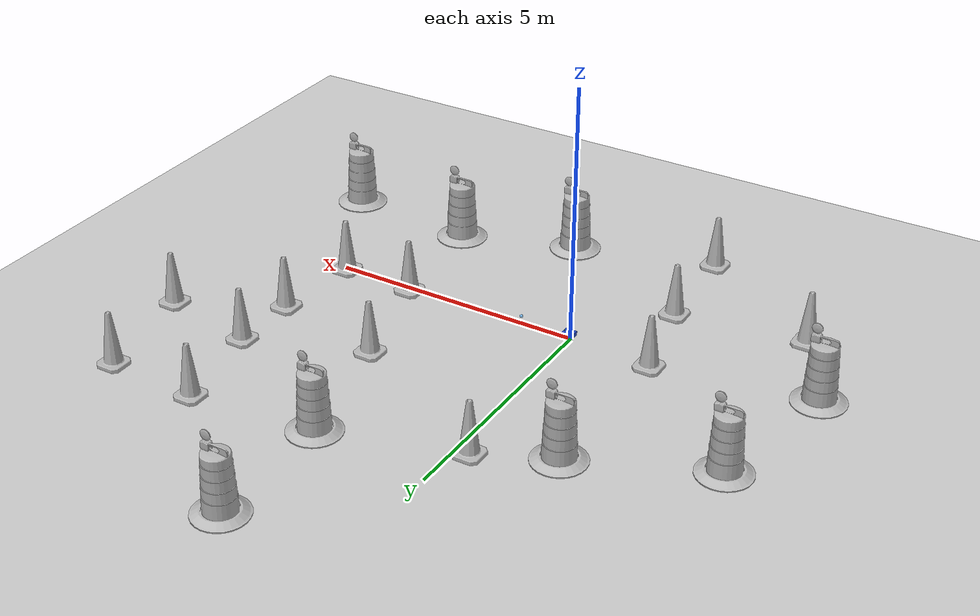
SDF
<sdf version="1.7">
 <world name="default">
  <light name="sun" type="directional">
   <pose>0 0 10 0 -0 0</pose>
   <diffuse>0.8 0.8 0.8 1</diffuse>
   <specular>0.2 0.2 0.2 1</specular>
   <attenuation>
    <range>1000</range>
    <constant>0.9</constant>
    <linear>0.01</linear>
    <quadratic>0.001</quadratic>
   </attenuation>
   <direction>-0.5 0.1 -0.9</direction>
   <spot><inner_angle>0</inner_angle><outer_angle>0</outer_angle><falloff>0</falloff></spot>
  </light>
  <model name="ground_plane">
   <static>1</static>
   <link name="link">
    <collision name="collision">
     <geometry><plane><normal>0 0 1</normal><size>100 100</size></plane></geometry>
     <surface>
      <contact><collide_bitmask>65535</collide_bitmask></contact>
      <friction><ode><mu>100</mu><mu2>50</mu2></ode></friction>
     </surface>
    </collision>
    <visual name="visual">
     <cast_shadows>0</cast_shadows>
     <geometry><plane><normal>0 0 1</normal><size>100 100</size></plane></geometry>
     <material>
      <script><uri>file://media/materials/scripts/gazebo.material</uri><name>Gazebo/Grey</name></script>
     </material>
    </visual>
   </link>
  </model>
  <gravity>0 0 -9.8</gravity>
  <magnetic_field>6e-06 2.3e-05 -4.2e-05</magnetic_field>
  <atmosphere type="adiabatic"/>
  <physics type="ode">
   <max_step_size>0.001</max_step_size>
   <real_time_factor>1</real_time_factor>
   <real_time_update_rate>1000</real_time_update_rate>
  </physics>
  <scene><ambient>0.4 0.4 0.4 1</ambient><background>0.7 0.7 0.7 1</background><shadows>1</shadows></scene>
  <audio><device>default</device></audio>
  <spherical_coordinates>
   <surface_model>EARTH_WGS84</surface_model>
   <latitude_deg>0</latitude_deg>
   <longitude_deg>0</longitude_deg>
   <elevation>0</elevation>
   <heading_deg>0</heading_deg>
  </spherical_coordinates>
  <model name="Construction Barrel">
   <link name="link">
    <inertial>
     <pose>0 0 0.4 0 -0 0</pose>
     <mass>500</mass>
     <inertia><ixx>51.2096</ixx><iyy>51.2096</iyy><izz>25</izz><ixy>0</ixy><ixz>0</ixz><iyz>0</iyz></inertia>
    </inertial>
    <collision name="collision">
     <geometry><mesh><uri>model://construction_barrel/meshes/construction_barrel.dae</uri></mesh></geometry>
    </collision>
    <visual name="visual">
     <geometry><mesh><uri>model://construction_barrel/meshes/construction_barrel.dae</uri></mesh></geometry>
    </visual>
   </link>
   <pose>2.30763 4.79513 -2e-06 7e-06 -4e-06 -3.5e-05</pose>
  </model>
  <model name="Construction Cone">
   <link name="link">
    <collision name="collision">
     <geometry>
      <mesh><scale>10 10 10</scale><uri>model://construction_cone/meshes/construction_cone.dae</uri></mesh>
     </geometry>
    </collision>
    <visual name="visual">
     <geometry>
      <mesh><scale>10 10 10</scale><uri>model://construction_cone/meshes/construction_cone.dae</uri></mesh>
     </geometry>
    </visual>
    <inertial>
     <inertia><ixx>1</ixx><ixy>0</ixy><ixz>0</ixz><iyy>1</iyy><iyz>0</iyz><izz>1</izz></inertia>
     <mass>1</mass>
    </inertial>
   </link>
   <pose>5.11771 1.81775 -0 0 -1e-06 0</pose>
  </model>
  <model name="Construction Cone_0">
   <link name="link">
    <collision name="collision">
     <geometry>
      <mesh><scale>10 10 10</scale><uri>model://construction_cone/meshes/construction_cone.dae</uri></mesh>
     </geometry>
    </collision>
    <visual name="visual">
     <geometry>
      <mesh><scale>10 10 10</scale><uri>model://construction_cone/meshes/construction_cone.dae</uri></mesh>
     </geometry>
    </visual>
    <inertial>
     <inertia><ixx>1</ixx><ixy>0</ixy><ixz>0</ixz><iyy>1</iyy><iyz>0</iyz><izz>1</izz></inertia>
     <mass>1</mass>
    </inertial>
   </link>
   <pose>5.11984 3.15792 -0 0 -0 0</pose>
  </model>
  <model name="Construction Cone_0_clone">
   <link name="link">
    <collision name="collision">
     <geometry>
      <mesh><scale>10 10 10</scale><uri>model://construction_cone/meshes/construction_cone.dae</uri></mesh>
     </geometry>
    </collision>
    <visual name="visual">
     <geometry>
      <mesh><scale>10 10 10</scale><uri>model://construction_cone/meshes/construction_cone.dae</uri></mesh>
     </geometry>
    </visual>
    <inertial>
     <inertia><ixx>1</ixx><ixy>0</ixy><ixz>0</ixz><iyy>1</iyy><iyz>0</iyz><izz>1</izz></inertia>
     <mass>1</mass>
    </inertial>
   </link>
   <pose>2.86711 2.31366 -1e-05 0 -0 0</pose>
  </model>
  <model name="Construction Cone_0_clone_0">
   <link name="link">
    <collision name="collision">
     <geometry>
      <mesh><scale>10 10 10</scale><uri>model://construction_cone/meshes/construction_cone.dae</uri></mesh>
     </geometry>
    </collision>
    <visual name="visual">
     <geometry>
      <mesh><scale>10 10 10</scale><uri>model://construction_cone/meshes/construction_cone.dae</uri></mesh>
     </geometry>
    </visual>
    <inertial>
     <inertia><ixx>1</ixx><ixy>0</ixy><ixz>0</ixz><iyy>1</iyy><iyz>0</iyz><izz>1</izz></inertia>
     <mass>1</mass>
    </inertial>
   </link>
   <pose>4.7463 5.08418 -0 0 -1e-06 0</pose>
  </model>
  <model name="Construction Cone_0_clone_1">
   <link name="link">
    <collision name="collision">
     <geometry>
      <mesh><scale>10 10 10</scale><uri>model://construction_cone/meshes/construction_cone.dae</uri></mesh>
     </geometry>
    </collision>
    <visual name="visual">
     <geometry>
      <mesh><scale>10 10 10</scale><uri>model://construction_cone/meshes/construction_cone.dae</uri></mesh>
     </geometry>
    </visual>
    <inertial>
     <inertia><ixx>1</ixx><ixy>0</ixy><ixz>0</ixz><iyy>1</iyy><iyz>0</iyz><izz>1</izz></inertia>
     <mass>1</mass>
    </inertial>
   </link>
   <pose>7.01819 2.78588 -0 0 -0 0</pose>
  </model>
  <model name="Construction Cone_0_clone_2">
   <link name="link">
    <collision name="collision">
     <geometry>
      <mesh><scale>10 10 10</scale><uri>model://construction_cone/meshes/construction_cone.dae</uri></mesh>
     </geometry>
    </collision>
    <visual name="visual">
     <geometry>
      <mesh><scale>10 10 10</scale><uri>model://construction_cone/meshes/construction_cone.dae</uri></mesh>
     </geometry>
    </visual>
    <inertial>
     <inertia><ixx>1</ixx><ixy>0</ixy><ixz>0</ixz><iyy>1</iyy><iyz>0</iyz><izz>1</izz></inertia>
     <mass>1</mass>
    </inertial>
   </link>
   <pose>4.94187 0.059317 0 -0 -0 -0</pose>
  </model>
  <model name="Construction Cone_0_clone_3">
   <link name="link">
    <collision name="collision">
     <geometry>
      <mesh><scale>10 10 10</scale><uri>model://construction_cone/meshes/construction_cone.dae</uri></mesh>
     </geometry>
    </collision>
    <visual name="visual">
     <geometry>
      <mesh><scale>10 10 10</scale><uri>model://construction_cone/meshes/construction_cone.dae</uri></mesh>
     </geometry>
    </visual>
    <inertial>
     <inertia><ixx>1</ixx><ixy>0</ixy><ixz>0</ixz><iyy>1</iyy><iyz>0</iyz><izz>1</izz></inertia>
     <mass>1</mass>
    </inertial>
   </link>
   <pose>6.57639 5.00083 -0 0 -1e-06 0</pose>
  </model>
  <model name="Construction Barrel_clone">
   <link name="link">
    <inertial>
     <pose>0 0 0.4 0 -0 0</pose>
     <mass>500</mass>
     <inertia><ixx>51.2096</ixx><iyy>51.2096</iyy><izz>25</izz><ixy>0</ixy><ixz>0</ixz><iyz>0</iyz></inertia>
    </inertial>
    <collision name="collision">
     <geometry><mesh><uri>model://construction_barrel/meshes/construction_barrel.dae</uri></mesh></geometry>
    </collision>
    <visual name="visual">
     <geometry><mesh><uri>model://construction_barrel/meshes/construction_barrel.dae</uri></mesh></geometry>
    </visual>
   </link>
   <pose>2.25923 7.37733 -2e-06 7e-06 -4e-06 -2.9e-05</pose>
  </model>
  <model name="Construction Barrel_clone_0">
   <link name="link">
    <inertial>
     <pose>0 0 0.4 0 -0 0</pose>
     <mass>500</mass>
     <inertia><ixx>51.2096</ixx><iyy>51.2096</iyy><izz>25</izz><ixy>0</ixy><ixz>0</ixz><iyz>0</iyz></inertia>
    </inertial>
    <collision name="collision">
     <geometry><mesh><uri>model://construction_barrel/meshes/construction_barrel.dae</uri></mesh></geometry>
    </collision>
    <visual name="visual">
     <geometry><mesh><uri>model://construction_barrel/meshes/construction_barrel.dae</uri></mesh></geometry>
    </visual>
   </link>
   <pose>6.32851 -2.49989 -3e-06 0 -1.2e-05 -3.2e-05</pose>
  </model>
  <model name="Construction Barrel_clone_1">
   <link name="link">
    <inertial>
     <pose>0 0 0.4 0 -0 0</pose>
     <mass>500</mass>
     <inertia><ixx>51.2096</ixx><iyy>51.2096</iyy><izz>25</izz><ixy>0</ixy><ixz>0</ixz><iyz>0</iyz></inertia>
    </inertial>
    <collision name="collision">
     <geometry><mesh><uri>model://construction_barrel/meshes/construction_barrel.dae</uri></mesh></geometry>
    </collision>
    <visual name="visual">
     <geometry><mesh><uri>model://construction_barrel/meshes/construction_barrel.dae</uri></mesh></geometry>
    </visual>
   </link>
   <pose>1.55294 -3.04966 -2e-06 7e-06 -4e-06 -3e-05</pose>
  </model>
  <model name="my_bot">
   <link name="base_link">
    <inertial>
     <pose>0.05876 0 0.049411 0 -0 0</pose>
     <mass>0.7</mass>
     <inertia>
      <ixx>0.00331011</ixx>
      <ixy>0</ixy>
      <ixz>0.000366172</ixz>
      <iyy>0.0036148</iyy>
      <iyz>0</iyz>
      <izz>0.00466744</izz>
     </inertia>
    </inertial>
    <collision name="base_link_fixed_joint_lump__chassis_collision">
     <pose>0.05251 0 0.045175 0 -0 0</pose>
     <geometry><box><size>0.225 0.225 0.09035</size></box></geometry>
    </collision>
    <collision name="base_link_fixed_joint_lump__caster_wheel_collision_1">
     <pose>0.10876 0 0 0 -0 0</pose>
     <geometry><sphere><radius>0.04</radius></sphere></geometry>
     <surface><friction><ode><mu>0.001</mu><mu2>0.001</mu2></ode></friction></surface>
    </collision>
    <collision name="base_link_fixed_joint_lump__laser_frame_collision_2">
     <pose>0.04001 0 0.12 0 -0 0</pose>
     <geometry><cylinder><length>0.025</length><radius>0.04</radius></cylinder></geometry>
    </collision>
    <visual name="base_link_fixed_joint_lump__chassis_visual">
     <pose>0.05251 0 0.045175 0 -0 0</pose>
     <geometry><box><size>0.225 0.225 0.09035</size></box></geometry>
     <material>
      <script><name>Gazebo/Blue</name><uri>file://media/materials/scripts/gazebo.material</uri></script>
     </material>
    </visual>
    <visual name="base_link_fixed_joint_lump__camera_link_visual_1">
     <pose>0.14001 0 0.10285 0 -0 0</pose>
     <geometry><box><size>0.005 0.025 0.025</size></box></geometry>
     <material>
      <script><name>Gazebo/Green</name><uri>file://media/materials/scripts/gazebo.material</uri></script>
     </material>
    </visual>
    <visual name="base_link_fixed_joint_lump__caster_wheel_visual_2">
     <pose>0.10876 0 0 0 -0 0</pose>
     <geometry><sphere><radius>0.04</radius></sphere></geometry>
     <material>
      <script><name>Gazebo/White</name><uri>file://media/materials/scripts/gazebo.material</uri></script>
     </material>
    </visual>
    <visual name="base_link_fixed_joint_lump__laser_frame_visual_3">
     <pose>0.04001 0 0.12 0 -0 0</pose>
     <geometry><cylinder><length>0.025</length><radius>0.04</radius></cylinder></geometry>
     <material>
      <script><name>Gazebo/Red</name><uri>file://media/materials/scripts/gazebo.material</uri></script>
     </material>
    </visual>
    <sensor name="camera" type="camera">
     <visualize>1</visualize>
     <update_rate>10</update_rate>
     <camera>
      <horizontal_fov>1.089</horizontal_fov>
      <image><format>R8G8B8</format><width>640</width><height>480</height></image>
      <clip><near>0.05</near><far>8</far></clip>
     </camera>
     <plugin name="camera_controller" filename="libgazebo_ros_camera.so">
      <frame_name>camera_link_optical</frame_name>
     </plugin>
     <pose>0.14001 0 0.10285 0 -0 0</pose>
    </sensor>
    <sensor name="laser" type="ray">
     <visualize>0</visualize>
     <update_rate>10</update_rate>
     <ray>
      <scan>
       <horizontal>
        <samples>360</samples>
        <min_angle>-3.14</min_angle>
        <max_angle>3.14</max_angle>
        <resolution>1</resolution>
       </horizontal>
       <vertical><samples>1</samples><min_angle>0</min_angle><max_angle>0</max_angle></vertical>
      </scan>
      <range><min>0.3</min><max>12</max></range>
     </ray>
     <plugin name="laser_controller" filename="libgazebo_ros_ray_sensor.so">
      <ros><argument>~/out:=scan</argument></ros>
      <output_type>sensor_msgs/LaserScan</output_type>
      <frame_name>laser_frame</frame_name>
     </plugin>
     <pose>0.04001 0 0.12 0 -0 0</pose>
    </sensor>
   </link>
   <joint name="left_wheel_joint" type="revolute">
    <pose relative_to="base_link">0 0.11975 0 -1.5708 0 0</pose>
    <parent>base_link</parent>
    <child>left_wheel</child>
    <axis>
     <xyz>0 0 1</xyz>
     <limit><lower>-1e+16</lower><upper>1e+16</upper></limit>
     <dynamics><spring_reference>0</spring_reference><spring_stiffness>0</spring_stiffness></dynamics>
    </axis>
   </joint>
   <link name="left_wheel">
    <pose relative_to="left_wheel_joint">0 0 0 0 -0 0</pose>
    <inertial>
     <mass>0.1</mass>
     <inertia>
      <ixx>4.08333e-05</ixx>
      <ixy>0</ixy>
      <ixz>0</ixz>
      <iyy>4.08333e-05</iyy>
      <iyz>0</iyz>
      <izz>8e-05</izz>
     </inertia>
    </inertial>
    <collision name="left_wheel_collision">
     <geometry><cylinder><length>0.01</length><radius>0.04</radius></cylinder></geometry>
    </collision>
    <visual name="left_wheel_visual">
     <geometry><cylinder><length>0.01</length><radius>0.04</radius></cylinder></geometry>
     <material>
      <script><name>Gazebo/Black</name><uri>file://media/materials/scripts/gazebo.material</uri></script>
     </material>
    </visual>
   </link>
   <joint name="right_wheel_joint" type="revolute">
    <pose relative_to="base_link">0 -0.11975 0 1.5708 -0 0</pose>
    <parent>base_link</parent>
    <child>right_wheel</child>
    <axis>
     <xyz>0 0 -1</xyz>
     <limit><lower>-1e+16</lower><upper>1e+16</upper></limit>
     <dynamics><spring_reference>0</spring_reference><spring_stiffness>0</spring_stiffness></dynamics>
    </axis>
   </joint>
   <link name="right_wheel">
    <pose relative_to="right_wheel_joint">0 0 0 0 -0 0</pose>
    <inertial>
     <mass>0.1</mass>
     <inertia>
      <ixx>4.08333e-05</ixx>
      <ixy>0</ixy>
      <ixz>0</ixz>
      <iyy>4.08333e-05</iyy>
      <iyz>0</iyz>
      <izz>8e-05</izz>
     </inertia>
    </inertial>
    <collision name="right_wheel_collision">
     <geometry><cylinder><length>0.01</length><radius>0.04</radius></cylinder></geometry>
    </collision>
    <visual name="right_wheel_visual">
     <geometry><cylinder><length>0.01</length><radius>0.04</radius></cylinder></geometry>
     <material>
      <script><name>Gazebo/Black</name><uri>file://media/materials/scripts/gazebo.material</uri></script>
     </material>
    </visual>
   </link>
   <static>0</static>
   <plugin name="gazebo_ros2_control" filename="libgazebo_ros2_control.so">
    <parameters>/home/praveenrav702/comp_ws/install/autonomous_diffdrive_robot/share/autonomous_diffdrive_robot/config/my_controllers.yaml</parameters>
    <parameters>/home/praveenrav702/comp_ws/install/autonomous_diffdrive_robot/share/autonomous_diffdrive_robot/config/gaz_ros2_ctl_use_sim.yaml</parameters>
   </plugin>
   <pose>-0.004266 0.000175 0.04 0 2.3e-05 -0.000349</pose>
  </model>
  <model name="Construction Cone_clone">
   <link name="link">
    <collision name="collision">
     <geometry>
      <mesh><scale>10 10 10</scale><uri>model://construction_cone/meshes/construction_cone.dae</uri></mesh>
     </geometry>
    </collision>
    <visual name="visual">
     <geometry>
      <mesh><scale>10 10 10</scale><uri>model://construction_cone/meshes/construction_cone.dae</uri></mesh>
     </geometry>
    </visual>
    <inertial>
     <inertia><ixx>1</ixx><ixy>0</ixy><ixz>0</ixz><iyy>1</iyy><iyz>0</iyz><izz>1</izz></inertia>
     <mass>1</mass>
    </inertial>
   </link>
   <pose>-1.26264 -1.73156 -0 0 -0 0</pose>
  </model>
  <model name="Construction Cone_clone_0">
   <link name="link">
    <collision name="collision">
     <geometry>
      <mesh><scale>10 10 10</scale><uri>model://construction_cone/meshes/construction_cone.dae</uri></mesh>
     </geometry>
    </collision>
    <visual name="visual">
     <geometry>
      <mesh><scale>10 10 10</scale><uri>model://construction_cone/meshes/construction_cone.dae</uri></mesh>
     </geometry>
    </visual>
    <inertial>
     <inertia><ixx>1</ixx><ixy>0</ixy><ixz>0</ixz><iyy>1</iyy><iyz>0</iyz><izz>1</izz></inertia>
     <mass>1</mass>
    </inertial>
   </link>
   <pose>-1.64621 0.125239 -0 0 -0 0</pose>
  </model>
  <model name="Construction Barrel_clone_1_clone">
   <link name="link">
    <inertial>
     <pose>0 0 0.4 0 -0 0</pose>
     <mass>500</mass>
     <inertia><ixx>51.2096</ixx><iyy>51.2096</iyy><izz>25</izz><ixy>0</ixy><ixz>0</ixz><iyz>0</iyz></inertia>
    </inertial>
    <collision name="collision">
     <geometry><mesh><uri>model://construction_barrel/meshes/construction_barrel.dae</uri></mesh></geometry>
    </collision>
    <visual name="visual">
     <geometry><mesh><uri>model://construction_barrel/meshes/construction_barrel.dae</uri></mesh></geometry>
    </visual>
   </link>
   <pose>-1.6074 3.37649 -4e-06 -5e-06 -7e-06 -3.8e-05</pose>
  </model>
  <model name="Construction Barrel_clone_1_clone_0">
   <link name="link">
    <inertial>
     <pose>0 0 0.4 0 -0 0</pose>
     <mass>500</mass>
     <inertia><ixx>51.2096</ixx><iyy>51.2096</iyy><izz>25</izz><ixy>0</ixy><ixz>0</ixz><iyz>0</iyz></inertia>
    </inertial>
    <collision name="collision">
     <geometry><mesh><uri>model://construction_barrel/meshes/construction_barrel.dae</uri></mesh></geometry>
    </collision>
    <visual name="visual">
     <geometry><mesh><uri>model://construction_barrel/meshes/construction_barrel.dae</uri></mesh></geometry>
    </visual>
   </link>
   <pose>-4.07798 2.30241 -2e-06 7e-06 -4e-06 -3.4e-05</pose>
  </model>
  <model name="Construction Barrel_clone_1_clone_1">
   <link name="link">
    <inertial>
     <pose>0 0 0.4 0 -0 0</pose>
     <mass>500</mass>
     <inertia><ixx>51.2096</ixx><iyy>51.2096</iyy><izz>25</izz><ixy>0</ixy><ixz>0</ixz><iyz>0</iyz></inertia>
    </inertial>
    <collision name="collision">
     <geometry><mesh><uri>model://construction_barrel/meshes/construction_barrel.dae</uri></mesh></geometry>
    </collision>
    <visual name="visual">
     <geometry><mesh><uri>model://construction_barrel/meshes/construction_barrel.dae</uri></mesh></geometry>
    </visual>
   </link>
   <pose>-4.63159 -0.432297 0 0 0 -3.5e-05</pose>
  </model>
  <model name="Construction Barrel_clone_1_clone_2">
   <link name="link">
    <inertial>
     <pose>0 0 0.4 0 -0 0</pose>
     <mass>500</mass>
     <inertia><ixx>51.2096</ixx><iyy>51.2096</iyy><izz>25</izz><ixy>0</ixy><ixz>0</ixz><iyz>0</iyz></inertia>
    </inertial>
    <collision name="collision">
     <geometry><mesh><uri>model://construction_barrel/meshes/construction_barrel.dae</uri></mesh></geometry>
    </collision>
    <visual name="visual">
     <geometry><mesh><uri>model://construction_barrel/meshes/construction_barrel.dae</uri></mesh></geometry>
    </visual>
   </link>
   <pose>3.74047 -2.28317 0 0 0 -3.1e-05</pose>
  </model>
  <model name="Construction Cone_clone_clone">
   <link name="link">
    <collision name="collision">
     <geometry>
      <mesh><scale>10 10 10</scale><uri>model://construction_cone/meshes/construction_cone.dae</uri></mesh>
     </geometry>
    </collision>
    <visual name="visual">
     <geometry>
      <mesh><scale>10 10 10</scale><uri>model://construction_cone/meshes/construction_cone.dae</uri></mesh>
     </geometry>
    </visual>
    <inertial>
     <inertia><ixx>1</ixx><ixy>0</ixy><ixz>0</ixz><iyy>1</iyy><iyz>0</iyz><izz>1</izz></inertia>
     <mass>1</mass>
    </inertial>
   </link>
   <pose>-0.275385 4.02422 -0 0 -0 0</pose>
  </model>
  <model name="Construction Cone_clone_clone_0">
   <link name="link">
    <collision name="collision">
     <geometry>
      <mesh><scale>10 10 10</scale><uri>model://construction_cone/meshes/construction_cone.dae</uri></mesh>
     </geometry>
    </collision>
    <visual name="visual">
     <geometry>
      <mesh><scale>10 10 10</scale><uri>model://construction_cone/meshes/construction_cone.dae</uri></mesh>
     </geometry>
    </visual>
    <inertial>
     <inertia><ixx>1</ixx><ixy>0</ixy><ixz>0</ixz><iyy>1</iyy><iyz>0</iyz><izz>1</izz></inertia>
     <mass>1</mass>
    </inertial>
   </link>
   <pose>-3.75156 -2.0888 -0 0 -0 0</pose>
  </model>
  <model name="Construction Cone_clone_clone_1">
   <link name="link">
    <collision name="collision">
     <geometry>
      <mesh><scale>10 10 10</scale><uri>model://construction_cone/meshes/construction_cone.dae</uri></mesh>
     </geometry>
    </collision>
    <visual name="visual">
     <geometry>
      <mesh><scale>10 10 10</scale><uri>model://construction_cone/meshes/construction_cone.dae</uri></mesh>
     </geometry>
    </visual>
    <inertial>
     <inertia><ixx>1</ixx><ixy>0</ixy><ixz>0</ixz><iyy>1</iyy><iyz>0</iyz><izz>1</izz></inertia>
     <mass>1</mass>
    </inertial>
   </link>
   <pose>-1.15662 -3.81001 -0 0 -0 0</pose>
  </model>
  <model name="Construction Cone_clone_clone_2">
   <link name="link">
    <collision name="collision">
     <geometry>
      <mesh><scale>10 10 10</scale><uri>model://construction_cone/meshes/construction_cone.dae</uri></mesh>
     </geometry>
    </collision>
    <visual name="visual">
     <geometry>
      <mesh><scale>10 10 10</scale><uri>model://construction_cone/meshes/construction_cone.dae</uri></mesh>
     </geometry>
    </visual>
    <inertial>
     <inertia><ixx>1</ixx><ixy>0</ixy><ixz>0</ixz><iyy>1</iyy><iyz>0</iyz><izz>1</izz></inertia>
     <mass>1</mass>
    </inertial>
   </link>
   <pose>3.46399 0.095983 -0 0 -0 0</pose>
  </model>
  <model name="lacrosse_ball">
   <link name="link">
    <inertial>
     <mass>1</mass>
     <inertia><ixx>0.1</ixx><ixy>0</ixy><ixz>0</ixz><iyy>0.1</iyy><iyz>0</iyz><izz>0.1</izz></inertia>
    </inertial>
    <visual name="visual">
     <geometry><sphere><radius>0.03175</radius></sphere></geometry>
     <material>
      <script><name>Gazebo/SkyBlue</name><uri>file://media/materials/scripts/gazebo.material</uri></script>
      <shader type="pixel"><normal_map>__default__</normal_map></shader>
      <ambient>0.208 0.518 0.894 1</ambient>
      <diffuse>0.208 0.518 0.894 1</diffuse>
      <specular>0.01 0.01 0.01 1</specular>
      <emissive>0 0 0 1</emissive>
     </material>
    </visual>
    <collision name="collision">
     <geometry><sphere><radius>0.03175</radius></sphere></geometry>
     <surface>
      <friction>
       <ode><mu>1</mu><mu2>1</mu2><fdir1>0 0 0</fdir1><slip1>0</slip1><slip2>0</slip2></ode>
       <torsional>
        <coefficient>1</coefficient>
        <patch_radius>0</patch_radius>
        <surface_radius>0</surface_radius>
        <use_patch_radius>1</use_patch_radius>
        <ode><slip>0</slip></ode>
       </torsional>
      </friction>
      <bounce><restitution_coefficient>0</restitution_coefficient><threshold>1e+06</threshold></bounce>
      <contact>
       <collide_without_contact>0</collide_without_contact>
       <collide_without_contact_bitmask>1</collide_without_contact_bitmask>
       <collide_bitmask>1</collide_bitmask>
       <ode>
        <soft_cfm>0</soft_cfm>
        <soft_erp>0.2</soft_erp>
        <kp>1e+13</kp>
        <kd>1</kd>
        <max_vel>0.01</max_vel>
        <min_depth>0</min_depth>
       </ode>
       <bullet>
        <split_impulse>1</split_impulse>
        <split_impulse_penetration_threshold>-0.01</split_impulse_penetration_threshold>
        <soft_cfm>0</soft_cfm>
        <soft_erp>0.2</soft_erp>
        <kp>1e+13</kp>
        <kd>1</kd>
       </bullet>
      </contact>
     </surface>
    </collision>
   </link>
   <static>0</static>
   <pose>1.14739 -0.177228 0.03175 0 -0 0</pose>
  </model>
 </world>
</sdf>
